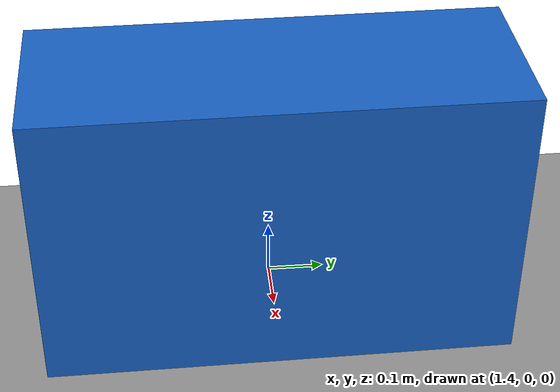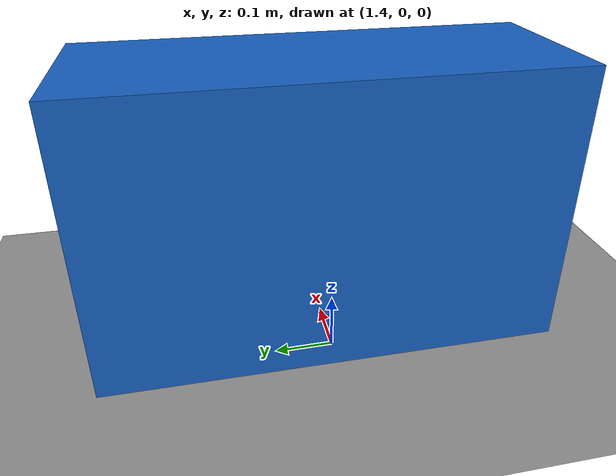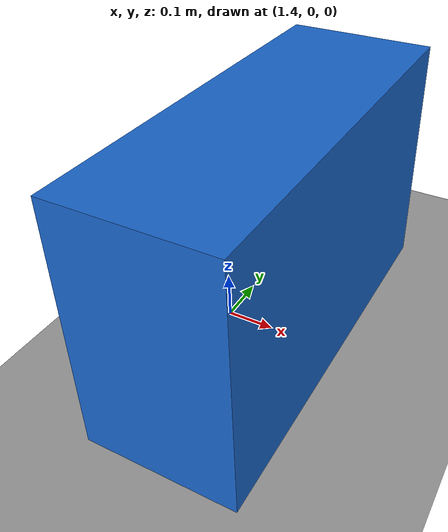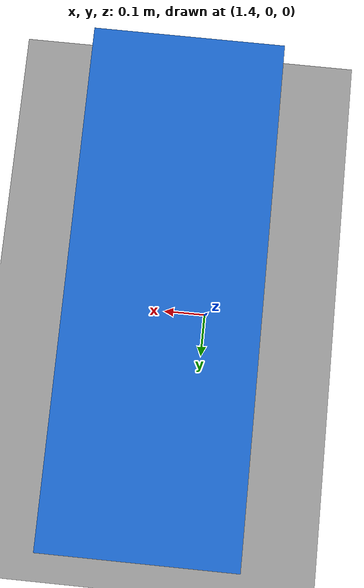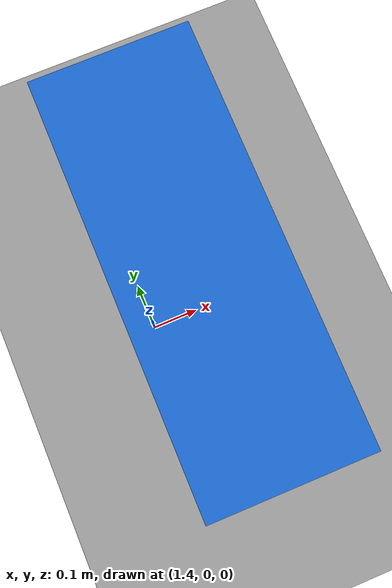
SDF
<?xml version="1.0"?>
<sdf version="1.6">
  <world name="robot1_mecanum_empty">
    <physics name="default_physics" type="ode">
      <max_step_size>0.001</max_step_size>
      <real_time_update_rate>1000</real_time_update_rate>
    </physics>

    <light name="sun" type="directional">
      <cast_shadows>true</cast_shadows>
      <pose>0 0 10 0 0 0</pose>
      <diffuse>0.8 0.8 0.8 1</diffuse>
      <specular>0.2 0.2 0.2 1</specular>
      <attenuation>
        <range>1000</range>
        <constant>0.9</constant>
        <linear>0.01</linear>
        <quadratic>0.001</quadratic>
      </attenuation>
      <direction>-0.5 0.1 -0.9</direction>
    </light>

    <model name="ground_plane">
      <static>true</static>
      <link name="link">
        <collision name="collision">
          <geometry>
            <plane>
              <normal>0 0 1</normal>
              <size>20 20</size>
            </plane>
          </geometry>
        </collision>
        <visual name="visual">
          <geometry>
            <plane>
              <normal>0 0 1</normal>
              <size>20 20</size>
            </plane>
          </geometry>
          <material>
            <ambient>0.6 0.6 0.6 1</ambient>
            <diffuse>0.6 0.6 0.6 1</diffuse>
          </material>
        </visual>
      </link>
    </model>

    <model name="scan_test_box">
      <pose>1.5 0 0.25 0 0 0</pose>
      <static>true</static>
      <link name="link">
        <collision name="collision">
          <geometry>
            <box>
              <size>0.3 0.8 0.5</size>
            </box>
          </geometry>
        </collision>
        <visual name="visual">
          <geometry>
            <box>
              <size>0.3 0.8 0.5</size>
            </box>
          </geometry>
          <material>
            <ambient>0.1 0.4 0.8 1</ambient>
            <diffuse>0.1 0.4 0.8 1</diffuse>
          </material>
        </visual>
      </link>
    </model>
  </world>
</sdf>
